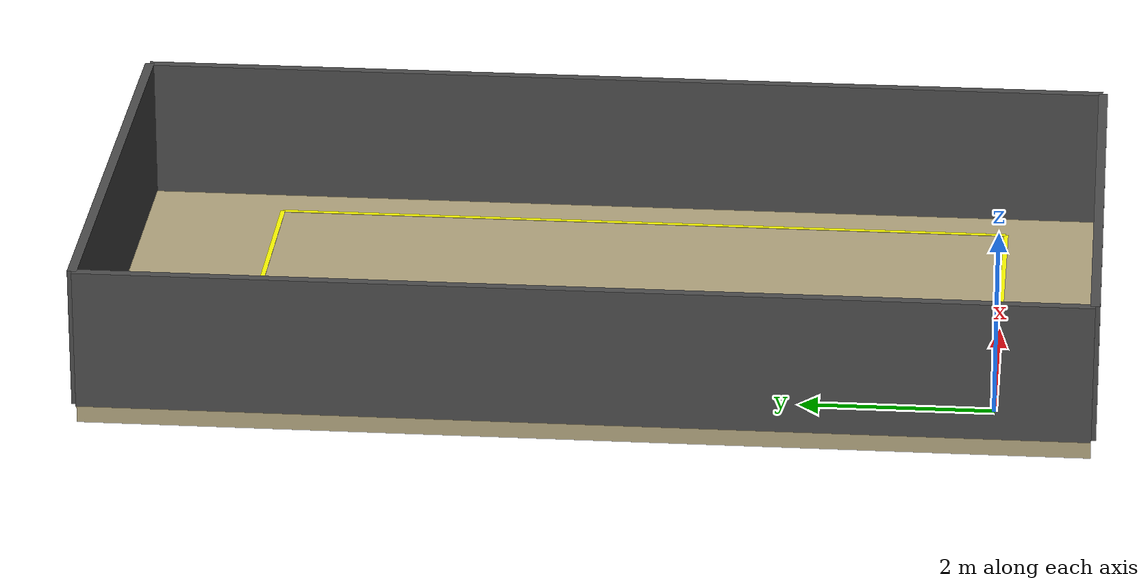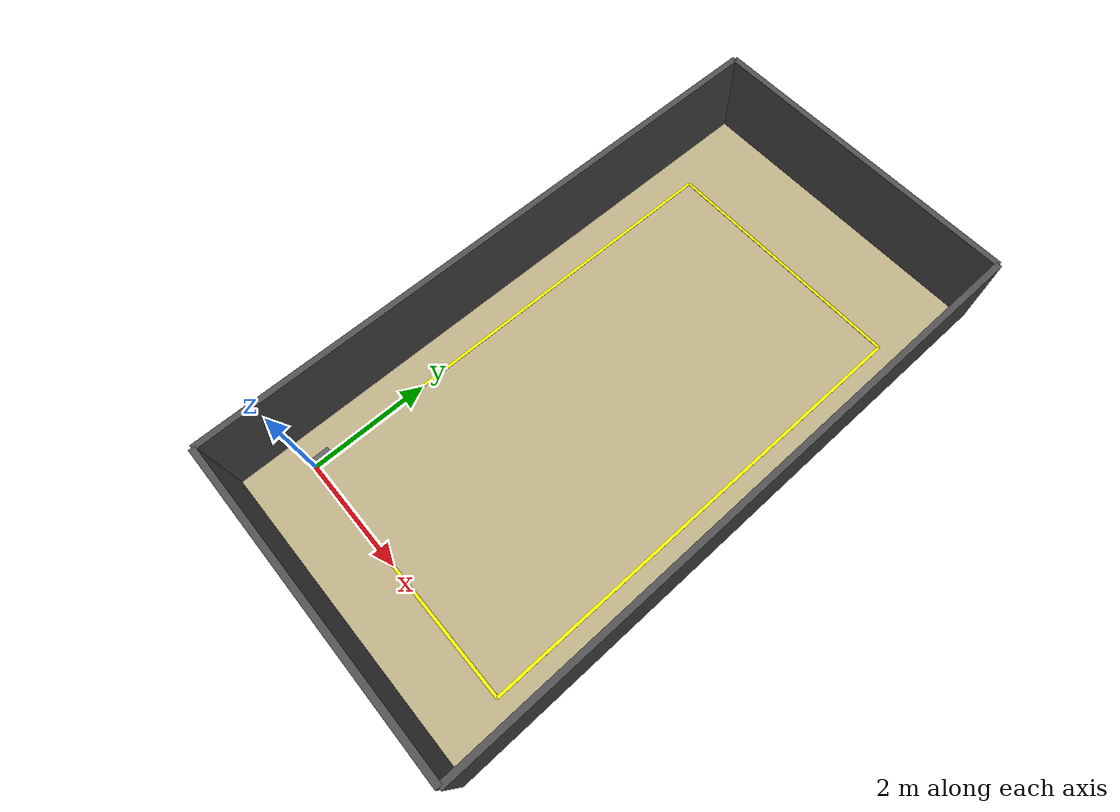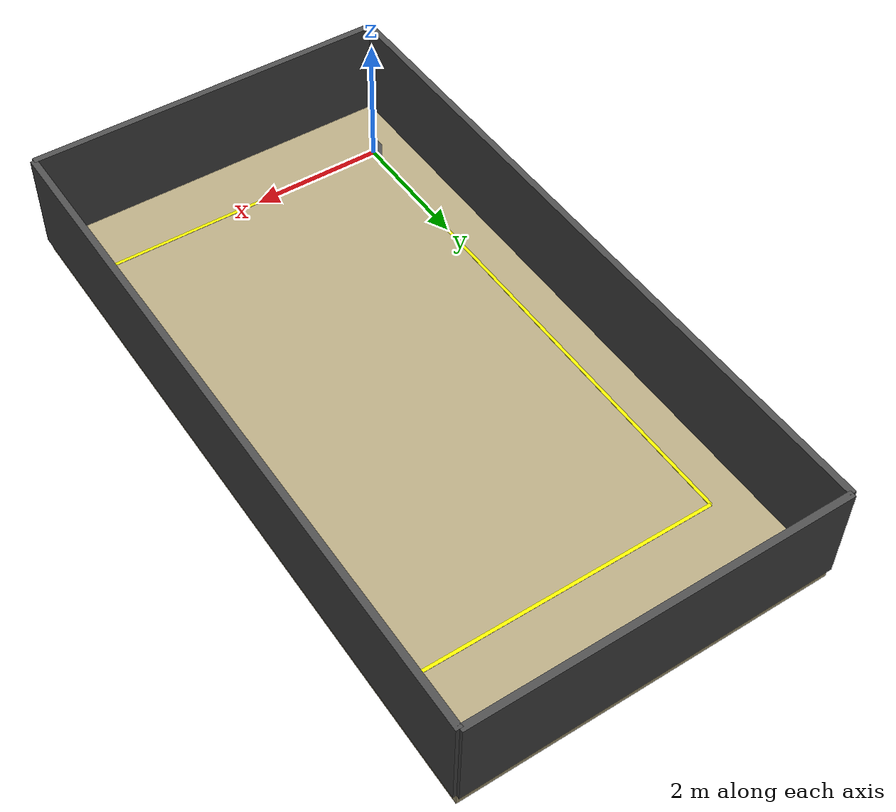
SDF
<?xml version="1.0"?>
<sdf version="1.6">
  <world name="lunabotics_uk_arena">

    <physics type="ode">
      <gravity>0 0 -9.81</gravity>
    </physics>

    <light type="directional" name="sun">
      <pose>0 0 10 0 0 0</pose>
      <direction>-0.5 0.1 -0.9</direction>
    </light>

    <model name="sand_floor">
      <static>true</static>
      <link name="link">
        <collision name="collision">
          <geometry>
            <box><size>5.5 10.4 0.2</size></box>
          </geometry>
        </collision>
        <visual name="visual">
            <geometry>
                <box><size>5.5 10.4 0.2</size></box>
            </geometry>
            <material>
                <ambient>0.7 0.65 0.5 1</ambient>
                <diffuse>0.7 0.65 0.5 1</diffuse>
            </material>
        </visual>
        <pose>2.15 4.2 -0.1 0 0 0</pose>
      </link>
    </model>

    <model name="boundary_south">
      <static>true</static>
      <link name="link">
        <visual name="visual">
          <geometry>
            <box><size>4.4 0.05 0.005</size></box>
          </geometry>
          <material>
            <ambient>1 1 0 1</ambient>
            <diffuse>1 1 0 1</diffuse>
          </material>
        </visual>
        <pose>2.2 0 0.011 0 0 0</pose>
      </link>
    </model>

    <model name="boundary_north">
      <static>true</static>
      <link name="link">
        <visual name="visual">
          <geometry>
            <box><size>4.4 0.05 0.005</size></box>
          </geometry>
          <material>
            <ambient>1 1 0 1</ambient>
            <diffuse>1 1 0 1</diffuse>
          </material>
        </visual>
        <pose>2.2 7.9 0.011 0 0 0</pose>
      </link>
    </model>

    <model name="boundary_west">
      <static>true</static>
      <link name="link">
        <visual name="visual">
          <geometry>
            <box><size>0.05 7.9 0.005</size></box>
          </geometry>
          <material>
            <ambient>1 1 0 1</ambient>
            <diffuse>1 1 0 1</diffuse>
          </material>
        </visual>
        <pose>0 3.95 0.011 0 0 0</pose>
      </link>
    </model>

    <model name="boundary_east">
      <static>true</static>
      <link name="link">
        <visual name="visual">
          <geometry>
            <box><size>0.05 7.9 0.005</size></box>
          </geometry>
          <material>
            <ambient>1 1 0 1</ambient>
            <diffuse>1 1 0 1</diffuse>
          </material>
        </visual>
        <pose>4.4 3.95 0.011 0 0 0</pose>
      </link>
    </model>

    <!-- ============================================================
         OUTER BUILDING WALLS (collision, set back from arena)
         ============================================================ -->

    <model name="building_wall_south">
      <static>true</static>
      <link name="link">
        <collision name="collision">
          <geometry>
            <box><size>5.5 0.1 1.5</size></box>
          </geometry>
        </collision>
        <visual name="visual">
          <geometry>
            <box><size>5.5 0.1 1.5</size></box>
          </geometry>
          <material>
            <ambient>0.3 0.3 0.3 1</ambient>
            <diffuse>0.3 0.3 0.3 1</diffuse>
          </material>
        </visual>
        <pose>2.15 -1.0 0.75 0 0 0</pose>
      </link>
    </model>

    <model name="building_wall_north">
      <static>true</static>
      <link name="link">
        <collision name="collision">
          <geometry>
            <box><size>5.5 0.1 1.5</size></box>
          </geometry>
        </collision>
        <visual name="visual">
          <geometry>
            <box><size>5.5 0.1 1.5</size></box>
          </geometry>
          <material>
            <ambient>0.3 0.3 0.3 1</ambient>
            <diffuse>0.3 0.3 0.3 1</diffuse>
          </material>
        </visual>
        <pose>2.15 9.4 0.75 0 0 0</pose>
      </link>
    </model>

    <model name="building_wall_west">
      <static>true</static>
      <link name="link">
        <collision name="collision">
          <geometry>
            <box><size>0.1 10.4 1.5</size></box>
          </geometry>
        </collision>
        <visual name="visual">
          <geometry>
            <box><size>0.1 10.4 1.5</size></box>
          </geometry>
          <material>
            <ambient>0.3 0.3 0.3 1</ambient>
            <diffuse>0.3 0.3 0.3 1</diffuse>
          </material>
        </visual>
        <pose>-0.6 4.2 0.75 0 0 0</pose>
      </link>
    </model>

    <model name="building_wall_east">
      <static>true</static>
      <link name="link">
        <collision name="collision">
          <geometry>
            <box><size>0.1 10.4 1.5</size></box>
          </geometry>
        </collision>
        <visual name="visual">
          <geometry>
            <box><size>0.1 10.4 1.5</size></box>
          </geometry>
          <material>
            <ambient>0.3 0.3 0.3 1</ambient>
            <diffuse>0.3 0.3 0.3 1</diffuse>
          </material>
        </visual>
        <pose>4.9 4.2 0.75 0 0 0</pose>
      </link>
    </model>

    <!-- ============================================================
         APRILTAG BEACON
         ============================================================ -->
    <model name="apriltag_0">
        <static>true</static>
        <pose>0.055 0.2 0.3 1.5708 0 1.5708</pose>
        <link name="link">
            <visual name="visual">
                <geometry>
                    <plane>
                        <normal>0 0 1</normal>
                        <size>0.25 0.25</size>
                    </plane>
                </geometry>
                <material>
                    <script>
                        <uri>model://apriltag_model/materials/scripts/apriltag.material</uri>
                        <uri>model://apriltag_model/materials/textures/</uri>
                        <name>AprilTag/tag0</name>
                    </script>
                </material>
            </visual>
        </link>
    </model>

  </world>
</sdf>
